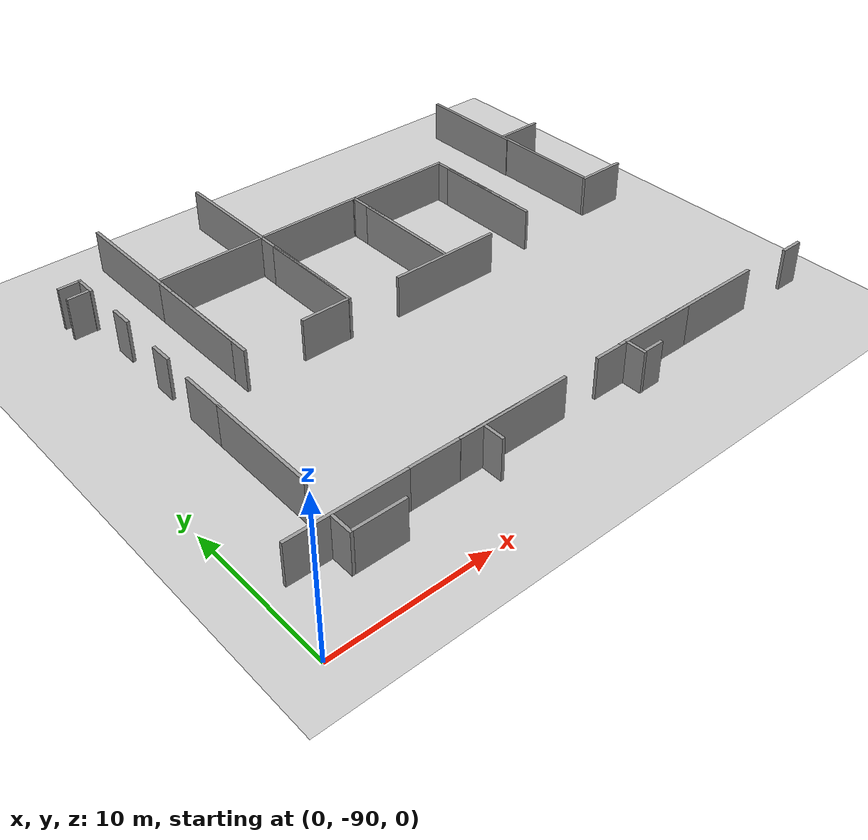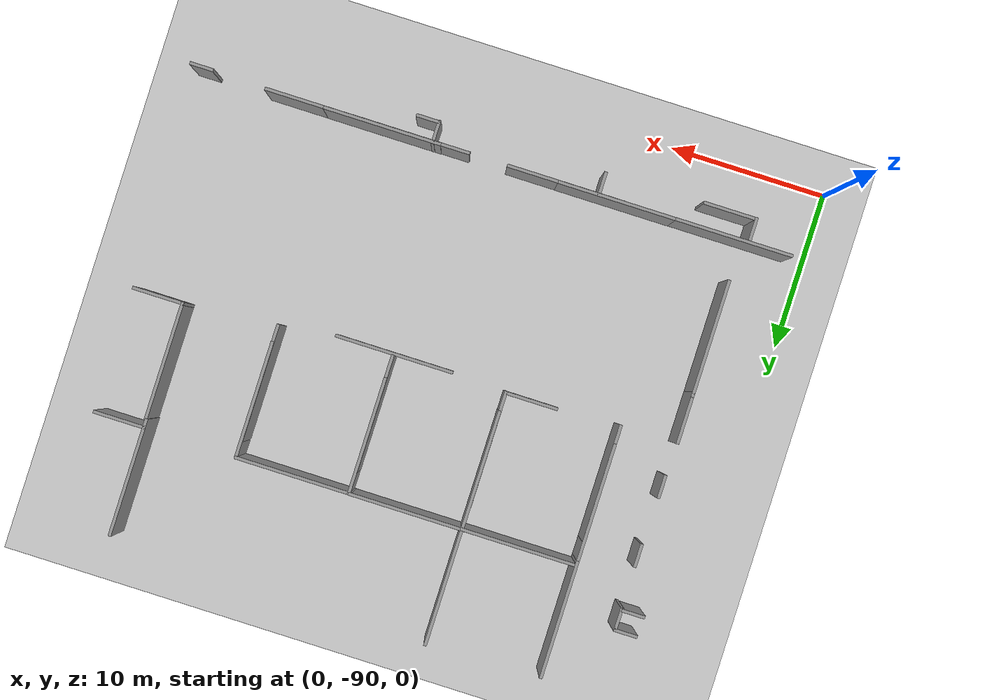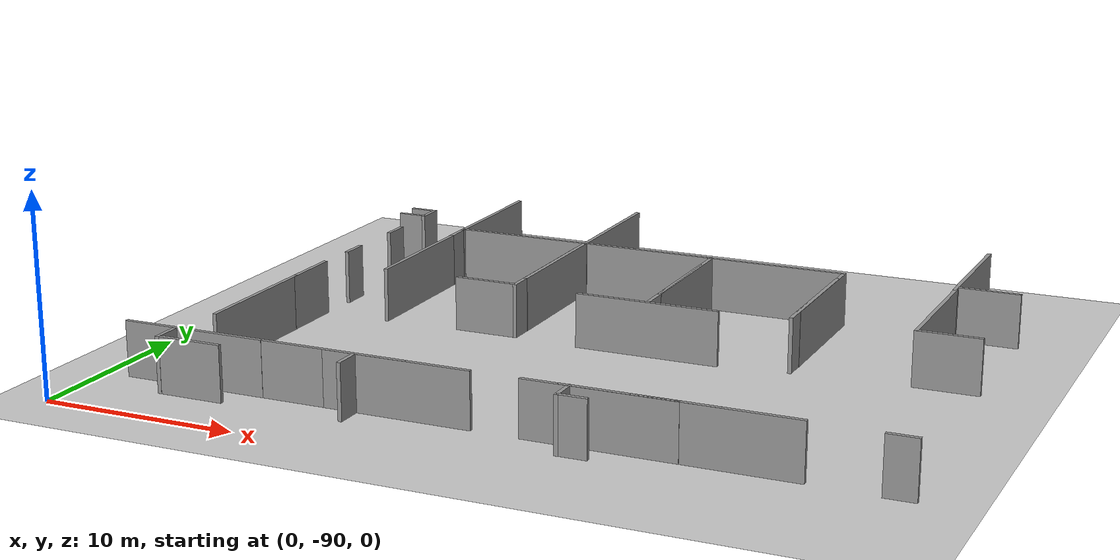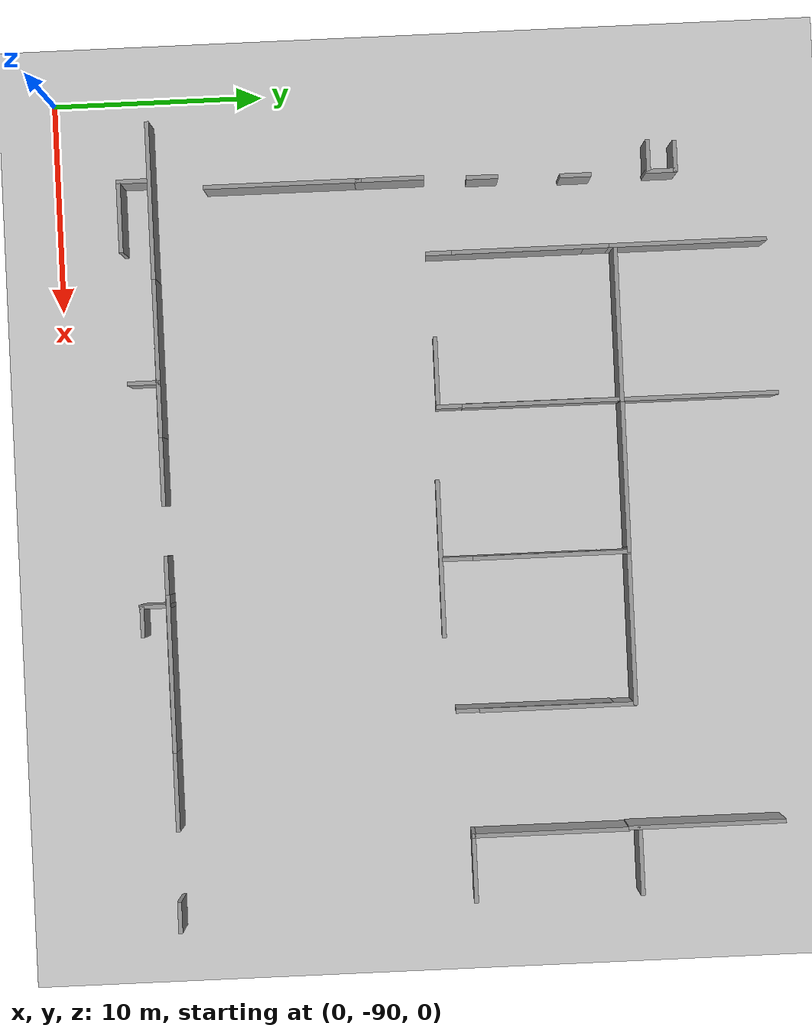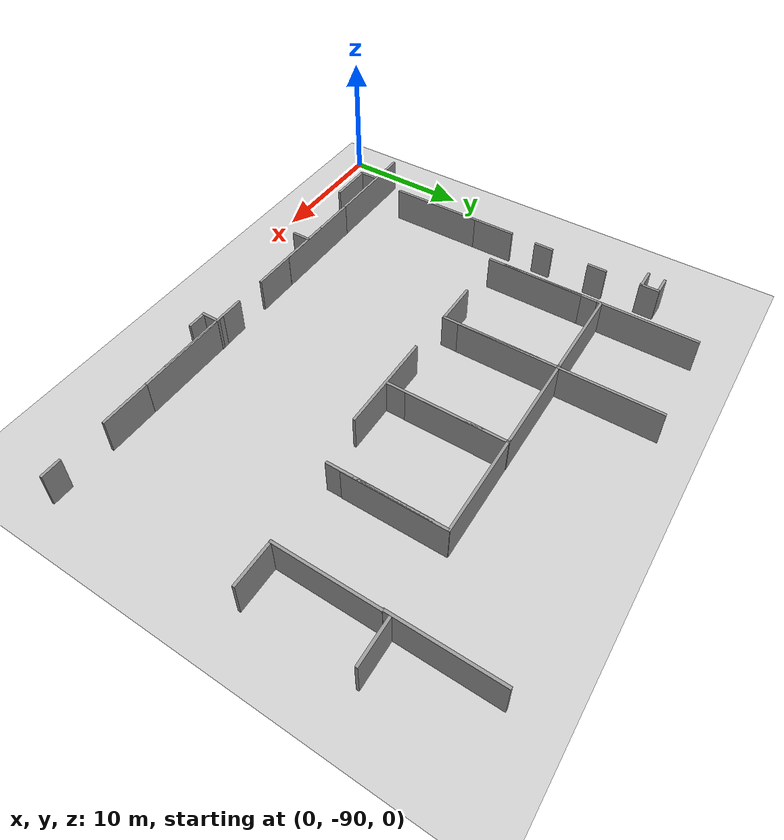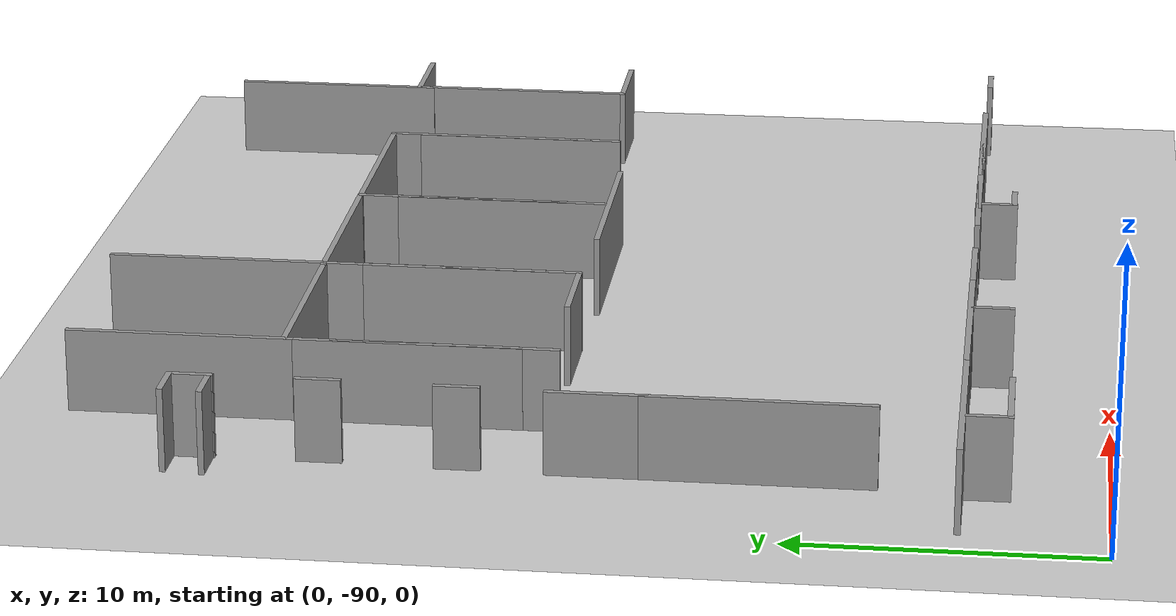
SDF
<sdf version="1.7">
 <world name="default">
  <model name="ground_plane">
   <static>1</static>
   <link name="link">
    <collision name="collision">
     <geometry><plane><normal>0 0 1</normal><size>100 100</size></plane></geometry>
     <surface>
      <contact><collide_bitmask>65535</collide_bitmask></contact>
      <friction><ode><mu>100</mu><mu2>50</mu2></ode></friction>
     </surface>
    </collision>
    <visual name="visual">
     <cast_shadows>0</cast_shadows>
     <geometry><plane><normal>0 0 1</normal><size>100 100</size></plane></geometry>
     <material>
      <script><uri>file://media/materials/scripts/gazebo.material</uri><name>Gazebo/Grey</name></script>
     </material>
    </visual>
   </link>
  </model>
  <model name="grey_wall_clone_2_clone_clone_clone_0_clone_1_clone_2">
   <static>1</static>
   <link name="link">
    <pose>0 0 1.4 0 -0 0</pose>
    <collision name="collision"><geometry><box><size>7.5 0.2 2.8</size></box></geometry></collision>
    <visual name="visual">
     <cast_shadows>0</cast_shadows>
     <geometry><box><size>7.5 0.2 2.8</size></box></geometry>
     <material>
      <script>
       <uri>model://grey_wall/materials/scripts</uri>
       <uri>model://grey_wall/materials/textures</uri>
       <name>vrc/grey_wall</name>
      </script>
     </material>
    </visual>
   </link>
   <pose>8.15911 -59.968 0 0 0 -1.5708</pose>
  </model>
  <model name="grey_wall_clone_2_clone_clone_clone_0_clone_1_clone_3">
   <static>1</static>
   <link name="link">
    <pose>0 0 1.4 0 -0 0</pose>
    <collision name="collision"><geometry><box><size>7.5 0.2 2.8</size></box></geometry></collision>
    <visual name="visual">
     <cast_shadows>0</cast_shadows>
     <geometry><box><size>7.5 0.2 2.8</size></box></geometry>
     <material>
      <script>
       <uri>model://grey_wall/materials/scripts</uri>
       <uri>model://grey_wall/materials/textures</uri>
       <name>vrc/grey_wall</name>
      </script>
     </material>
    </visual>
   </link>
   <pose>8.15597 -67.4415 0 0 0 -1.5708</pose>
  </model>
  <model name="grey_wall_clone_0_clone_0_clone_clone_1_clone_1_clone_clone_0_clone_clone">
   <static>1</static>
   <link name="link">
    <pose>0 0 1.4 0 -0 0</pose>
    <collision name="collision"><geometry><box><size>7.5 0.2 2.8</size></box></geometry></collision>
    <visual name="visual">
     <cast_shadows>0</cast_shadows>
     <geometry><box><size>7.5 0.2 2.8</size></box></geometry>
     <material>
      <script>
       <uri>model://grey_wall/materials/scripts</uri>
       <uri>model://grey_wall/materials/textures</uri>
       <name>vrc/grey_wall</name>
      </script>
     </material>
    </visual>
   </link>
   <pose>11.8281 -63.4143 0 0 -0 0</pose>
  </model>
  <model name="grey_wall_clone_2_clone_clone_clone_0_clone_1_clone_2_clone">
   <static>1</static>
   <link name="link">
    <pose>0 0 1.4 0 -0 0</pose>
    <collision name="collision"><geometry><box><size>7.5 0.2 2.8</size></box></geometry></collision>
    <visual name="visual">
     <cast_shadows>0</cast_shadows>
     <geometry><box><size>7.5 0.2 2.8</size></box></geometry>
     <material>
      <script>
       <uri>model://grey_wall/materials/scripts</uri>
       <uri>model://grey_wall/materials/textures</uri>
       <name>vrc/grey_wall</name>
      </script>
     </material>
    </visual>
   </link>
   <pose>15.4652 -59.7335 0 0 0 -1.5708</pose>
  </model>
  <model name="grey_wall_clone_2_clone_clone_clone_0_clone_1_clone_2_clone_1">
   <static>1</static>
   <link name="link">
    <pose>0 0 1.4 0 -0 0</pose>
    <collision name="collision"><geometry><box><size>7.5 0.2 2.8</size></box></geometry></collision>
    <visual name="visual">
     <cast_shadows>0</cast_shadows>
     <geometry><box><size>7.5 0.2 2.8</size></box></geometry>
     <material>
      <script>
       <uri>model://grey_wall/materials/scripts</uri>
       <uri>model://grey_wall/materials/textures</uri>
       <name>vrc/grey_wall</name>
      </script>
     </material>
    </visual>
   </link>
   <pose>15.4527 -67.244 0 0 0 -1.5708</pose>
  </model>
  <model name="grey_wall_clone_2_clone_clone_clone_0_clone_1_clone_3_clone">
   <static>1</static>
   <link name="link">
    <pose>0 0 1.4 0 -0 0</pose>
    <collision name="collision"><geometry><box><size>7.5 0.2 2.8</size></box></geometry></collision>
    <visual name="visual">
     <cast_shadows>0</cast_shadows>
     <geometry><box><size>7.5 0.2 2.8</size></box></geometry>
     <material>
      <script>
       <uri>model://grey_wall/materials/scripts</uri>
       <uri>model://grey_wall/materials/textures</uri>
       <name>vrc/grey_wall</name>
      </script>
     </material>
    </visual>
   </link>
   <pose>8.15766 -68.658 0 0 0 -1.5708</pose>
  </model>
  <model name="grey_wall_clone_2_clone_clone_clone_0_clone_1_clone_3_clone_0">
   <static>1</static>
   <link name="link">
    <pose>0 0 1.4 0 -0 0</pose>
    <collision name="collision"><geometry><box><size>7.5 0.2 2.8</size></box></geometry></collision>
    <visual name="visual">
     <cast_shadows>0</cast_shadows>
     <geometry><box><size>7.5 0.2 2.8</size></box></geometry>
     <material>
      <script>
       <uri>model://grey_wall/materials/scripts</uri>
       <uri>model://grey_wall/materials/textures</uri>
       <name>vrc/grey_wall</name>
      </script>
     </material>
    </visual>
   </link>
   <pose>15.4385 -68.4987 0 0 0 -1.5708</pose>
  </model>
  <model name="grey_wall_clone_0_clone_0_clone_clone_1_clone_1_clone_clone_0_clone_clone_clone">
   <static>1</static>
   <link name="link">
    <pose>0 0 1.4 0 -0 0</pose>
    <collision name="collision"><geometry><box><size>7.5 0.2 2.8</size></box></geometry></collision>
    <visual name="visual">
     <cast_shadows>0</cast_shadows>
     <geometry><box><size>7.5 0.2 2.8</size></box></geometry>
     <material>
      <script>
       <uri>model://grey_wall/materials/scripts</uri>
       <uri>model://grey_wall/materials/textures</uri>
       <name>vrc/grey_wall</name>
      </script>
     </material>
    </visual>
   </link>
   <pose>18.9683 -63.4004 0 0 -0 0</pose>
  </model>
  <model name="grey_wall_clone_2_clone_clone_clone_0_clone_1_clone_3_clone_0_clone">
   <static>1</static>
   <link name="link">
    <pose>0 0 1.4 0 -0 0</pose>
    <collision name="collision"><geometry><box><size>7.5 0.2 2.8</size></box></geometry></collision>
    <visual name="visual">
     <cast_shadows>0</cast_shadows>
     <geometry><box><size>7.5 0.2 2.8</size></box></geometry>
     <material>
      <script>
       <uri>model://grey_wall/materials/scripts</uri>
       <uri>model://grey_wall/materials/textures</uri>
       <name>vrc/grey_wall</name>
      </script>
     </material>
    </visual>
   </link>
   <pose>22.689 -67.0624 0 0 0 -1.5708</pose>
  </model>
  <model name="grey_wall_clone_2_clone_clone_clone_0_clone_1_clone_3_clone_0_clone_0">
   <static>1</static>
   <link name="link">
    <pose>0 0 1.4 0 -0 0</pose>
    <collision name="collision"><geometry><box><size>7.5 0.2 2.8</size></box></geometry></collision>
    <visual name="visual">
     <cast_shadows>0</cast_shadows>
     <geometry><box><size>7.5 0.2 2.8</size></box></geometry>
     <material>
      <script>
       <uri>model://grey_wall/materials/scripts</uri>
       <uri>model://grey_wall/materials/textures</uri>
       <name>vrc/grey_wall</name>
      </script>
     </material>
    </visual>
   </link>
   <pose>22.6786 -68.5108 0 0 0 -1.5708</pose>
  </model>
  <model name="grey_wall_clone_0_clone_0_clone_clone_1_clone_1_clone_clone_0_clone_clone_clone_clone">
   <static>1</static>
   <link name="link">
    <pose>0 0 1.4 0 -0 0</pose>
    <collision name="collision"><geometry><box><size>7.5 0.2 2.8</size></box></geometry></collision>
    <visual name="visual">
     <cast_shadows>0</cast_shadows>
     <geometry><box><size>7.5 0.2 2.8</size></box></geometry>
     <material>
      <script>
       <uri>model://grey_wall/materials/scripts</uri>
       <uri>model://grey_wall/materials/textures</uri>
       <name>vrc/grey_wall</name>
      </script>
     </material>
    </visual>
   </link>
   <pose>26.2397 -63.4136 0 0 -0 0</pose>
  </model>
  <model name="grey_wall_clone_2_clone_clone_clone_0_clone_1_clone_3_clone_0_clone_0_clone">
   <static>1</static>
   <link name="link">
    <pose>0 0 1.4 0 -0 0</pose>
    <collision name="collision"><geometry><box><size>7.5 0.2 2.8</size></box></geometry></collision>
    <visual name="visual">
     <cast_shadows>0</cast_shadows>
     <geometry><box><size>7.5 0.2 2.8</size></box></geometry>
     <material>
      <script>
       <uri>model://grey_wall/materials/scripts</uri>
       <uri>model://grey_wall/materials/textures</uri>
       <name>vrc/grey_wall</name>
      </script>
     </material>
    </visual>
   </link>
   <pose>29.9038 -67.0865 0 0 0 -1.5708</pose>
  </model>
  <model name="grey_wall_clone_2_clone_clone_clone_0_clone_1_clone_3_clone_0_clone_0_clone_0">
   <static>1</static>
   <link name="link">
    <pose>0 0 1.4 0 -0 0</pose>
    <collision name="collision"><geometry><box><size>7.5 0.2 2.8</size></box></geometry></collision>
    <visual name="visual">
     <cast_shadows>0</cast_shadows>
     <geometry><box><size>7.5 0.2 2.8</size></box></geometry>
     <material>
      <script>
       <uri>model://grey_wall/materials/scripts</uri>
       <uri>model://grey_wall/materials/textures</uri>
       <name>vrc/grey_wall</name>
      </script>
     </material>
    </visual>
   </link>
   <pose>29.8836 -68.1915 0 0 0 -1.5708</pose>
  </model>
  <model name="grey_wall_clone_0_clone_0_clone_clone_1_clone_1_clone_clone_0_clone_clone_clone_clone_0">
   <static>1</static>
   <link name="link">
    <pose>0 0 1.4 0 -0 0</pose>
    <collision name="collision"><geometry><box><size>7.5 0.2 2.8</size></box></geometry></collision>
    <visual name="visual">
     <cast_shadows>0</cast_shadows>
     <geometry><box><size>7.5 0.2 2.8</size></box></geometry>
     <material>
      <script>
       <uri>model://grey_wall/materials/scripts</uri>
       <uri>model://grey_wall/materials/textures</uri>
       <name>vrc/grey_wall</name>
      </script>
     </material>
    </visual>
   </link>
   <pose>22.624 -72.3311 0 0 -0 0</pose>
  </model>
  <model name="grey_wall_clone_2_clone_clone_clone_1_clone_clone_0_clone_clone_clone_clone_3">
   <static>1</static>
   <link name="link">
    <pose>0 0 1.4 0 -0 0</pose>
    <collision name="collision"><geometry><box><size>7.5 0.2 2.8</size></box></geometry></collision>
    <visual name="visual">
     <cast_shadows>0</cast_shadows>
     <geometry><box><size>7.5 0.2 2.8</size></box></geometry>
     <material>
      <script>
       <uri>model://grey_wall/materials/scripts</uri>
       <uri>model://grey_wall/materials/textures</uri>
       <name>vrc/grey_wall</name>
      </script>
     </material>
    </visual>
   </link>
   <pose>35.7785 -60.275 0 0 0 -1.5708</pose>
  </model>
  <model name="grey_wall_clone_2_clone_clone_clone_1_clone_clone_0_clone_clone_clone_clone_4">
   <static>1</static>
   <link name="link">
    <pose>0 0 1.4 0 -0 0</pose>
    <collision name="collision"><geometry><box><size>7.5 0.2 2.8</size></box></geometry></collision>
    <visual name="visual">
     <cast_shadows>0</cast_shadows>
     <geometry><box><size>7.5 0.2 2.8</size></box></geometry>
     <material>
      <script>
       <uri>model://grey_wall/materials/scripts</uri>
       <uri>model://grey_wall/materials/textures</uri>
       <name>vrc/grey_wall</name>
      </script>
     </material>
    </visual>
   </link>
   <pose>35.8291 -67.7015 0 0 0 -1.5708</pose>
  </model>
  <model name="half_wall_clone_0_clone_clone_clone_clone_clone_0">
   <link name="link">
    <pose>0 0 1.4 0 -0 0</pose>
    <inertial>
     <mass>1</mass>
     <inertia><ixx>1</ixx><ixy>0</ixy><ixz>0</ixz><iyy>1</iyy><iyz>0</iyz><izz>1</izz></inertia>
    </inertial>
    <visual name="visual">
     <cast_shadows>0</cast_shadows>
     <geometry><box><size>1.5 0.2 2.8</size></box></geometry>
     <material>
      <script>
       <uri>model://grey_wall/materials/scripts</uri>
       <uri>model://grey_wall/materials/textures</uri>
       <name>vrc/grey_wall</name>
      </script>
      <shader type="pixel"><normal_map>__default__</normal_map></shader>
      <ambient>1 1 1 1</ambient>
      <diffuse>1 1 1 1</diffuse>
      <specular>0 0 0 1</specular>
      <emissive>0 0 0 1</emissive>
     </material>
    </visual>
    <collision name="collision">
     <geometry><box><size>1.5 0.2 2.8</size></box></geometry>
     <surface>
      <friction>
       <ode><mu>1</mu><mu2>1</mu2><fdir1>0 0 0</fdir1><slip1>0</slip1><slip2>0</slip2></ode>
       <torsional>
        <coefficient>1</coefficient>
        <patch_radius>0</patch_radius>
        <surface_radius>0</surface_radius>
        <use_patch_radius>1</use_patch_radius>
        <ode><slip>0</slip></ode>
       </torsional>
      </friction>
      <bounce><restitution_coefficient>0</restitution_coefficient><threshold>1e+06</threshold></bounce>
      <contact>
       <collide_without_contact>0</collide_without_contact>
       <collide_without_contact_bitmask>1</collide_without_contact_bitmask>
       <collide_bitmask>1</collide_bitmask>
       <ode>
        <soft_cfm>0</soft_cfm>
        <soft_erp>0.2</soft_erp>
        <kp>1e+13</kp>
        <kd>1</kd>
        <max_vel>0.01</max_vel>
        <min_depth>0</min_depth>
       </ode>
       <bullet>
        <split_impulse>1</split_impulse>
        <split_impulse_penetration_threshold>-0.01</split_impulse_penetration_threshold>
        <soft_cfm>0</soft_cfm>
        <soft_erp>0.2</soft_erp>
        <kp>1e+13</kp>
        <kd>1</kd>
       </bullet>
      </contact>
     </surface>
    </collision>
   </link>
   <static>1</static>
   <pose>4.06122 -60.3961 0 0 -0 3.14159</pose>
  </model>
  <model name="half_wall_clone_0_clone_clone_clone_clone_clone_1">
   <link name="link">
    <pose>0 0 1.4 0 -0 0</pose>
    <inertial>
     <mass>1</mass>
     <inertia><ixx>1</ixx><ixy>0</ixy><ixz>0</ixz><iyy>1</iyy><iyz>0</iyz><izz>1</izz></inertia>
    </inertial>
    <visual name="visual">
     <cast_shadows>0</cast_shadows>
     <geometry><box><size>1.5 0.2 2.8</size></box></geometry>
     <material>
      <script>
       <uri>model://grey_wall/materials/scripts</uri>
       <uri>model://grey_wall/materials/textures</uri>
       <name>vrc/grey_wall</name>
      </script>
      <shader type="pixel"><normal_map>__default__</normal_map></shader>
      <ambient>1 1 1 1</ambient>
      <diffuse>1 1 1 1</diffuse>
      <specular>0 0 0 1</specular>
      <emissive>0 0 0 1</emissive>
     </material>
    </visual>
    <collision name="collision">
     <geometry><box><size>1.5 0.2 2.8</size></box></geometry>
     <surface>
      <friction>
       <ode><mu>1</mu><mu2>1</mu2><fdir1>0 0 0</fdir1><slip1>0</slip1><slip2>0</slip2></ode>
       <torsional>
        <coefficient>1</coefficient>
        <patch_radius>0</patch_radius>
        <surface_radius>0</surface_radius>
        <use_patch_radius>1</use_patch_radius>
        <ode><slip>0</slip></ode>
       </torsional>
      </friction>
      <bounce><restitution_coefficient>0</restitution_coefficient><threshold>1e+06</threshold></bounce>
      <contact>
       <collide_without_contact>0</collide_without_contact>
       <collide_without_contact_bitmask>1</collide_without_contact_bitmask>
       <collide_bitmask>1</collide_bitmask>
       <ode>
        <soft_cfm>0</soft_cfm>
        <soft_erp>0.2</soft_erp>
        <kp>1e+13</kp>
        <kd>1</kd>
        <max_vel>0.01</max_vel>
        <min_depth>0</min_depth>
       </ode>
       <bullet>
        <split_impulse>1</split_impulse>
        <split_impulse_penetration_threshold>-0.01</split_impulse_penetration_threshold>
        <soft_cfm>0</soft_cfm>
        <soft_erp>0.2</soft_erp>
        <kp>1e+13</kp>
        <kd>1</kd>
       </bullet>
      </contact>
     </surface>
    </collision>
   </link>
   <static>1</static>
   <pose>3.97285 -61.6667 0 0 -0 3.14159</pose>
  </model>
  <model name="half_wall_clone_0_clone_clone_clone_3">
   <link name="link">
    <pose>0 0 1.4 0 -0 0</pose>
    <inertial>
     <mass>1</mass>
     <inertia><ixx>1</ixx><ixy>0</ixy><ixz>0</ixz><iyy>1</iyy><iyz>0</iyz><izz>1</izz></inertia>
    </inertial>
    <visual name="visual">
     <cast_shadows>0</cast_shadows>
     <geometry><box><size>1.5 0.2 2.8</size></box></geometry>
     <material>
      <script>
       <uri>model://grey_wall/materials/scripts</uri>
       <uri>model://grey_wall/materials/textures</uri>
       <name>vrc/grey_wall</name>
      </script>
      <shader type="pixel"><normal_map>__default__</normal_map></shader>
      <ambient>1 1 1 1</ambient>
      <diffuse>1 1 1 1</diffuse>
      <specular>0 0 0 1</specular>
      <emissive>0 0 0 1</emissive>
     </material>
    </visual>
    <collision name="collision">
     <geometry><box><size>1.5 0.2 2.8</size></box></geometry>
     <surface>
      <friction>
       <ode><mu>1</mu><mu2>1</mu2><fdir1>0 0 0</fdir1><slip1>0</slip1><slip2>0</slip2></ode>
       <torsional>
        <coefficient>1</coefficient>
        <patch_radius>0</patch_radius>
        <surface_radius>0</surface_radius>
        <use_patch_radius>1</use_patch_radius>
        <ode><slip>0</slip></ode>
       </torsional>
      </friction>
      <bounce><restitution_coefficient>0</restitution_coefficient><threshold>1e+06</threshold></bounce>
      <contact>
       <collide_without_contact>0</collide_without_contact>
       <collide_without_contact_bitmask>1</collide_without_contact_bitmask>
       <collide_bitmask>1</collide_bitmask>
       <ode>
        <soft_cfm>0</soft_cfm>
        <soft_erp>0.2</soft_erp>
        <kp>1e+13</kp>
        <kd>1</kd>
        <max_vel>0.01</max_vel>
        <min_depth>0</min_depth>
       </ode>
       <bullet>
        <split_impulse>1</split_impulse>
        <split_impulse_penetration_threshold>-0.01</split_impulse_penetration_threshold>
        <soft_cfm>0</soft_cfm>
        <soft_erp>0.2</soft_erp>
        <kp>1e+13</kp>
        <kd>1</kd>
       </bullet>
      </contact>
     </surface>
    </collision>
   </link>
   <static>1</static>
   <pose>4.72456 -61.0607 0 0 0 -1.5708</pose>
  </model>
  <model name="half_wall_clone_0_clone_clone_clone_4">
   <link name="link">
    <pose>0 0 1.4 0 -0 0</pose>
    <inertial>
     <mass>1</mass>
     <inertia><ixx>1</ixx><ixy>0</ixy><ixz>0</ixz><iyy>1</iyy><iyz>0</iyz><izz>1</izz></inertia>
    </inertial>
    <visual name="visual">
     <cast_shadows>0</cast_shadows>
     <geometry><box><size>1.5 0.2 2.8</size></box></geometry>
     <material>
      <script>
       <uri>model://grey_wall/materials/scripts</uri>
       <uri>model://grey_wall/materials/textures</uri>
       <name>vrc/grey_wall</name>
      </script>
      <shader type="pixel"><normal_map>__default__</normal_map></shader>
      <ambient>1 1 1 1</ambient>
      <diffuse>1 1 1 1</diffuse>
      <specular>0 0 0 1</specular>
      <emissive>0 0 0 1</emissive>
     </material>
    </visual>
    <collision name="collision">
     <geometry><box><size>1.5 0.2 2.8</size></box></geometry>
     <surface>
      <friction>
       <ode><mu>1</mu><mu2>1</mu2><fdir1>0 0 0</fdir1><slip1>0</slip1><slip2>0</slip2></ode>
       <torsional>
        <coefficient>1</coefficient>
        <patch_radius>0</patch_radius>
        <surface_radius>0</surface_radius>
        <use_patch_radius>1</use_patch_radius>
        <ode><slip>0</slip></ode>
       </torsional>
      </friction>
      <bounce><restitution_coefficient>0</restitution_coefficient><threshold>1e+06</threshold></bounce>
      <contact>
       <collide_without_contact>0</collide_without_contact>
       <collide_without_contact_bitmask>1</collide_without_contact_bitmask>
       <collide_bitmask>1</collide_bitmask>
       <ode>
        <soft_cfm>0</soft_cfm>
        <soft_erp>0.2</soft_erp>
        <kp>1e+13</kp>
        <kd>1</kd>
        <max_vel>0.01</max_vel>
        <min_depth>0</min_depth>
       </ode>
       <bullet>
        <split_impulse>1</split_impulse>
        <split_impulse_penetration_threshold>-0.01</split_impulse_penetration_threshold>
        <soft_cfm>0</soft_cfm>
        <soft_erp>0.2</soft_erp>
        <kp>1e+13</kp>
        <kd>1</kd>
       </bullet>
      </contact>
     </surface>
    </collision>
   </link>
   <static>1</static>
   <pose>4.75348 -65.1422 0 0 0 -1.5708</pose>
  </model>
  <model name="half_wall_clone_0_clone_clone_clone_5">
   <link name="link">
    <pose>0 0 1.4 0 -0 0</pose>
    <inertial>
     <mass>1</mass>
     <inertia><ixx>1</ixx><ixy>0</ixy><ixz>0</ixz><iyy>1</iyy><iyz>0</iyz><izz>1</izz></inertia>
    </inertial>
    <visual name="visual">
     <cast_shadows>0</cast_shadows>
     <geometry><box><size>1.5 0.2 2.8</size></box></geometry>
     <material>
      <script>
       <uri>model://grey_wall/materials/scripts</uri>
       <uri>model://grey_wall/materials/textures</uri>
       <name>vrc/grey_wall</name>
      </script>
      <shader type="pixel"><normal_map>__default__</normal_map></shader>
      <ambient>1 1 1 1</ambient>
      <diffuse>1 1 1 1</diffuse>
      <specular>0 0 0 1</specular>
      <emissive>0 0 0 1</emissive>
     </material>
    </visual>
    <collision name="collision">
     <geometry><box><size>1.5 0.2 2.8</size></box></geometry>
     <surface>
      <friction>
       <ode><mu>1</mu><mu2>1</mu2><fdir1>0 0 0</fdir1><slip1>0</slip1><slip2>0</slip2></ode>
       <torsional>
        <coefficient>1</coefficient>
        <patch_radius>0</patch_radius>
        <surface_radius>0</surface_radius>
        <use_patch_radius>1</use_patch_radius>
        <ode><slip>0</slip></ode>
       </torsional>
      </friction>
      <bounce><restitution_coefficient>0</restitution_coefficient><threshold>1e+06</threshold></bounce>
      <contact>
       <collide_without_contact>0</collide_without_contact>
       <collide_without_contact_bitmask>1</collide_without_contact_bitmask>
       <collide_bitmask>1</collide_bitmask>
       <ode>
        <soft_cfm>0</soft_cfm>
        <soft_erp>0.2</soft_erp>
        <kp>1e+13</kp>
        <kd>1</kd>
        <max_vel>0.01</max_vel>
        <min_depth>0</min_depth>
       </ode>
       <bullet>
        <split_impulse>1</split_impulse>
        <split_impulse_penetration_threshold>-0.01</split_impulse_penetration_threshold>
        <soft_cfm>0</soft_cfm>
        <soft_erp>0.2</soft_erp>
        <kp>1e+13</kp>
        <kd>1</kd>
       </bullet>
      </contact>
     </surface>
    </collision>
   </link>
   <static>1</static>
   <pose>4.64709 -69.5671 0 0 0 -1.5708</pose>
  </model>
  <model name="fixed_half_clone_8_clone_clone">
   <link name="link">
    <pose>0 0 1.4 0 -0 0</pose>
    <inertial>
     <mass>1</mass>
     <inertia><ixx>1</ixx><ixy>0</ixy><ixz>0</ixz><iyy>1</iyy><iyz>0</iyz><izz>1</izz></inertia>
    </inertial>
    <visual name="visual">
     <cast_shadows>0</cast_shadows>
     <geometry><box><size>3.3 0.2 2.8</size></box></geometry>
     <material>
      <script>
       <uri>model://grey_wall/materials/scripts</uri>
       <uri>model://grey_wall/materials/textures</uri>
       <name>vrc/grey_wall</name>
      </script>
      <shader type="pixel"><normal_map>__default__</normal_map></shader>
      <ambient>1 1 1 1</ambient>
      <diffuse>1 1 1 1</diffuse>
      <specular>0 0 0 1</specular>
      <emissive>0 0 0 1</emissive>
     </material>
    </visual>
    <collision name="collision">
     <geometry><box><size>3.3 0.2 2.8</size></box></geometry>
     <surface>
      <friction>
       <ode><mu>1</mu><mu2>1</mu2><fdir1>0 0 0</fdir1><slip1>0</slip1><slip2>0</slip2></ode>
       <torsional>
        <coefficient>1</coefficient>
        <patch_radius>0</patch_radius>
        <surface_radius>0</surface_radius>
        <use_patch_radius>1</use_patch_radius>
        <ode><slip>0</slip></ode>
       </torsional>
      </friction>
      <bounce><restitution_coefficient>0</restitution_coefficient><threshold>1e+06</threshold></bounce>
      <contact>
       <collide_without_contact>0</collide_without_contact>
       <collide_without_contact_bitmask>1</collide_without_contact_bitmask>
       <collide_bitmask>1</collide_bitmask>
       <ode>
        <soft_cfm>0</soft_cfm>
        <soft_erp>0.2</soft_erp>
        <kp>1e+13</kp>
        <kd>1</kd>
        <max_vel>0.01</max_vel>
        <min_depth>0</min_depth>
       </ode>
       <bullet>
        <split_impulse>1</split_impulse>
        <split_impulse_penetration_threshold>-0.01</split_impulse_penetration_threshold>
        <soft_cfm>0</soft_cfm>
        <soft_erp>0.2</soft_erp>
        <kp>1e+13</kp>
        <kd>1</kd>
       </bullet>
      </contact>
     </surface>
    </collision>
   </link>
   <static>1</static>
   <pose>4.54465 -73.9744 0 0 0 -1.5708</pose>
  </model>
  <model name="fixed_half_clone_17_clone">
   <link name="link">
    <pose>0 0 1.4 0 -0 0</pose>
    <inertial>
     <mass>1</mass>
     <inertia><ixx>1</ixx><ixy>0</ixy><ixz>0</ixz><iyy>1</iyy><iyz>0</iyz><izz>1</izz></inertia>
    </inertial>
    <visual name="visual">
     <cast_shadows>0</cast_shadows>
     <geometry><box><size>3.3 0.2 2.8</size></box></geometry>
     <material>
      <script>
       <uri>model://grey_wall/materials/scripts</uri>
       <uri>model://grey_wall/materials/textures</uri>
       <name>vrc/grey_wall</name>
      </script>
      <shader type="pixel"><normal_map>__default__</normal_map></shader>
      <ambient>1 1 1 1</ambient>
      <diffuse>1 1 1 1</diffuse>
      <specular>0 0 0 1</specular>
      <emissive>0 0 0 1</emissive>
     </material>
    </visual>
    <collision name="collision">
     <geometry><box><size>3.3 0.2 2.8</size></box></geometry>
     <surface>
      <friction>
       <ode><mu>1</mu><mu2>1</mu2><fdir1>0 0 0</fdir1><slip1>0</slip1><slip2>0</slip2></ode>
       <torsional>
        <coefficient>1</coefficient>
        <patch_radius>0</patch_radius>
        <surface_radius>0</surface_radius>
        <use_patch_radius>1</use_patch_radius>
        <ode><slip>0</slip></ode>
       </torsional>
      </friction>
      <bounce><restitution_coefficient>0</restitution_coefficient><threshold>1e+06</threshold></bounce>
      <contact>
       <collide_without_contact>0</collide_without_contact>
       <collide_without_contact_bitmask>1</collide_without_contact_bitmask>
       <collide_bitmask>1</collide_bitmask>
       <ode>
        <soft_cfm>0</soft_cfm>
        <soft_erp>0.2</soft_erp>
        <kp>1e+13</kp>
        <kd>1</kd>
        <max_vel>0.01</max_vel>
        <min_depth>0</min_depth>
       </ode>
       <bullet>
        <split_impulse>1</split_impulse>
        <split_impulse_penetration_threshold>-0.01</split_impulse_penetration_threshold>
        <soft_cfm>0</soft_cfm>
        <soft_erp>0.2</soft_erp>
        <kp>1e+13</kp>
        <kd>1</kd>
       </bullet>
      </contact>
     </surface>
    </collision>
   </link>
   <static>1</static>
   <pose>13.7658 -72.1398 0 0 -0 3.14159</pose>
  </model>
  <model name="fixed_half_clone_17_clone_1">
   <link name="link">
    <pose>0 0 1.4 0 -0 0</pose>
    <inertial>
     <mass>1</mass>
     <inertia><ixx>1</ixx><ixy>0</ixy><ixz>0</ixz><iyy>1</iyy><iyz>0</iyz><izz>1</izz></inertia>
    </inertial>
    <visual name="visual">
     <cast_shadows>0</cast_shadows>
     <geometry><box><size>3.3 0.2 2.8</size></box></geometry>
     <material>
      <script>
       <uri>model://grey_wall/materials/scripts</uri>
       <uri>model://grey_wall/materials/textures</uri>
       <name>vrc/grey_wall</name>
      </script>
      <shader type="pixel"><normal_map>__default__</normal_map></shader>
      <ambient>1 1 1 1</ambient>
      <diffuse>1 1 1 1</diffuse>
      <specular>0 0 0 1</specular>
      <emissive>0 0 0 1</emissive>
     </material>
    </visual>
    <collision name="collision">
     <geometry><box><size>3.3 0.2 2.8</size></box></geometry>
     <surface>
      <friction>
       <ode><mu>1</mu><mu2>1</mu2><fdir1>0 0 0</fdir1><slip1>0</slip1><slip2>0</slip2></ode>
       <torsional>
        <coefficient>1</coefficient>
        <patch_radius>0</patch_radius>
        <surface_radius>0</surface_radius>
        <use_patch_radius>1</use_patch_radius>
        <ode><slip>0</slip></ode>
       </torsional>
      </friction>
      <bounce><restitution_coefficient>0</restitution_coefficient><threshold>1e+06</threshold></bounce>
      <contact>
       <collide_without_contact>0</collide_without_contact>
       <collide_without_contact_bitmask>1</collide_without_contact_bitmask>
       <collide_bitmask>1</collide_bitmask>
       <ode>
        <soft_cfm>0</soft_cfm>
        <soft_erp>0.2</soft_erp>
        <kp>1e+13</kp>
        <kd>1</kd>
        <max_vel>0.01</max_vel>
        <min_depth>0</min_depth>
       </ode>
       <bullet>
        <split_impulse>1</split_impulse>
        <split_impulse_penetration_threshold>-0.01</split_impulse_penetration_threshold>
        <soft_cfm>0</soft_cfm>
        <soft_erp>0.2</soft_erp>
        <kp>1e+13</kp>
        <kd>1</kd>
       </bullet>
      </contact>
     </surface>
    </collision>
   </link>
   <static>1</static>
   <pose>37.3741 -71.3693 0 0 -0 3.14159</pose>
  </model>
  <model name="fixed_half_clone_17_clone_2">
   <link name="link">
    <pose>0 0 1.4 0 -0 0</pose>
    <inertial>
     <mass>1</mass>
     <inertia><ixx>1</ixx><ixy>0</ixy><ixz>0</ixz><iyy>1</iyy><iyz>0</iyz><izz>1</izz></inertia>
    </inertial>
    <visual name="visual">
     <cast_shadows>0</cast_shadows>
     <geometry><box><size>3.3 0.2 2.8</size></box></geometry>
     <material>
      <script>
       <uri>model://grey_wall/materials/scripts</uri>
       <uri>model://grey_wall/materials/textures</uri>
       <name>vrc/grey_wall</name>
      </script>
      <shader type="pixel"><normal_map>__default__</normal_map></shader>
      <ambient>1 1 1 1</ambient>
      <diffuse>1 1 1 1</diffuse>
      <specular>0 0 0 1</specular>
      <emissive>0 0 0 1</emissive>
     </material>
    </visual>
    <collision name="collision">
     <geometry><box><size>3.3 0.2 2.8</size></box></geometry>
     <surface>
      <friction>
       <ode><mu>1</mu><mu2>1</mu2><fdir1>0 0 0</fdir1><slip1>0</slip1><slip2>0</slip2></ode>
       <torsional>
        <coefficient>1</coefficient>
        <patch_radius>0</patch_radius>
        <surface_radius>0</surface_radius>
        <use_patch_radius>1</use_patch_radius>
        <ode><slip>0</slip></ode>
       </torsional>
      </friction>
      <bounce><restitution_coefficient>0</restitution_coefficient><threshold>1e+06</threshold></bounce>
      <contact>
       <collide_without_contact>0</collide_without_contact>
       <collide_without_contact_bitmask>1</collide_without_contact_bitmask>
       <collide_bitmask>1</collide_bitmask>
       <ode>
        <soft_cfm>0</soft_cfm>
        <soft_erp>0.2</soft_erp>
        <kp>1e+13</kp>
        <kd>1</kd>
        <max_vel>0.01</max_vel>
        <min_depth>0</min_depth>
       </ode>
       <bullet>
        <split_impulse>1</split_impulse>
        <split_impulse_penetration_threshold>-0.01</split_impulse_penetration_threshold>
        <soft_cfm>0</soft_cfm>
        <soft_erp>0.2</soft_erp>
        <kp>1e+13</kp>
        <kd>1</kd>
       </bullet>
      </contact>
     </surface>
    </collision>
   </link>
   <static>1</static>
   <pose>37.3653 -63.4639 0 0 -0 3.14159</pose>
  </model>
  <model name="grey_wall_clone_1_clone_2_clone_clone_clone_clone_clone_clone_clone_3_clone_0_clone_0_clone_5_clone_2_clone_2_clone_clone_17">
   <static>1</static>
   <link name="link">
    <pose>0 0 1.4 0 -0 0</pose>
    <collision name="collision"><geometry><box><size>7.5 0.2 2.8</size></box></geometry></collision>
    <visual name="visual">
     <cast_shadows>0</cast_shadows>
     <geometry><box><size>7.5 0.2 2.8</size></box></geometry>
     <material>
      <script>
       <uri>model://grey_wall/materials/scripts</uri>
       <uri>model://grey_wall/materials/textures</uri>
       <name>vrc/grey_wall</name>
      </script>
     </material>
    </visual>
   </link>
   <pose>27.5164 -85.34 0 0 -0 0</pose>
  </model>
  <model name="grey_wall_clone_1_clone_2_clone_clone_clone_clone_clone_clone_clone_3_clone_0_clone_0_clone_5_clone_2_clone_2_clone_clone_19">
   <static>1</static>
   <link name="link">
    <pose>0 0 1.4 0 -0 0</pose>
    <collision name="collision"><geometry><box><size>7.5 0.2 2.8</size></box></geometry></collision>
    <visual name="visual">
     <cast_shadows>0</cast_shadows>
     <geometry><box><size>7.5 0.2 2.8</size></box></geometry>
     <material>
      <script>
       <uri>model://grey_wall/materials/scripts</uri>
       <uri>model://grey_wall/materials/textures</uri>
       <name>vrc/grey_wall</name>
      </script>
     </material>
    </visual>
   </link>
   <pose>12.5436 -85.3398 0 0 -0 0</pose>
  </model>
  <model name="grey_wall_clone_1_clone_2_clone_clone_clone_clone_clone_clone_clone_3_clone_0_clone_0_clone_5_clone_2_clone_2_clone_clone_20">
   <static>1</static>
   <link name="link">
    <pose>0 0 1.4 0 -0 0</pose>
    <collision name="collision"><geometry><box><size>7.5 0.2 2.8</size></box></geometry></collision>
    <visual name="visual">
     <cast_shadows>0</cast_shadows>
     <geometry><box><size>7.5 0.2 2.8</size></box></geometry>
     <material>
      <script>
       <uri>model://grey_wall/materials/scripts</uri>
       <uri>model://grey_wall/materials/textures</uri>
       <name>vrc/grey_wall</name>
      </script>
     </material>
    </visual>
   </link>
   <pose>5.04811 -85.3477 0 0 -0 0</pose>
  </model>
  <model name="grey_wall_clone_2_clone_clone_clone_0_clone_1_clone_3_clone_clone_0">
   <static>1</static>
   <link name="link">
    <pose>0 0 1.4 0 -0 0</pose>
    <collision name="collision"><geometry><box><size>7.5 0.2 2.8</size></box></geometry></collision>
    <visual name="visual">
     <cast_shadows>0</cast_shadows>
     <geometry><box><size>7.5 0.2 2.8</size></box></geometry>
     <material>
      <script>
       <uri>model://grey_wall/materials/scripts</uri>
       <uri>model://grey_wall/materials/textures</uri>
       <name>vrc/grey_wall</name>
      </script>
     </material>
    </visual>
   </link>
   <pose>4.54276 -79.0504 0 0 0 -1.5708</pose>
  </model>
  <model name="half_wall_clone_0_clone_clone_clone_6_clone_clone">
   <link name="link">
    <pose>0 0 1.4 0 -0 0</pose>
    <inertial>
     <mass>1</mass>
     <inertia><ixx>1</ixx><ixy>0</ixy><ixz>0</ixz><iyy>1</iyy><iyz>0</iyz><izz>1</izz></inertia>
    </inertial>
    <visual name="visual">
     <cast_shadows>0</cast_shadows>
     <geometry><box><size>1.5 0.2 2.8</size></box></geometry>
     <material>
      <script>
       <uri>model://grey_wall/materials/scripts</uri>
       <uri>model://grey_wall/materials/textures</uri>
       <name>vrc/grey_wall</name>
      </script>
      <shader type="pixel"><normal_map>__default__</normal_map></shader>
      <ambient>1 1 1 1</ambient>
      <diffuse>1 1 1 1</diffuse>
      <specular>0 0 0 1</specular>
      <emissive>0 0 0 1</emissive>
     </material>
    </visual>
    <collision name="collision">
     <geometry><box><size>1.5 0.2 2.8</size></box></geometry>
     <surface>
      <friction>
       <ode><mu>1</mu><mu2>1</mu2><fdir1>0 0 0</fdir1><slip1>0</slip1><slip2>0</slip2></ode>
       <torsional>
        <coefficient>1</coefficient>
        <patch_radius>0</patch_radius>
        <surface_radius>0</surface_radius>
        <use_patch_radius>1</use_patch_radius>
        <ode><slip>0</slip></ode>
       </torsional>
      </friction>
      <bounce><restitution_coefficient>0</restitution_coefficient><threshold>1e+06</threshold></bounce>
      <contact>
       <collide_without_contact>0</collide_without_contact>
       <collide_without_contact_bitmask>1</collide_without_contact_bitmask>
       <collide_bitmask>1</collide_bitmask>
       <ode>
        <soft_cfm>0</soft_cfm>
        <soft_erp>0.2</soft_erp>
        <kp>1e+13</kp>
        <kd>1</kd>
        <max_vel>0.01</max_vel>
        <min_depth>0</min_depth>
       </ode>
       <bullet>
        <split_impulse>1</split_impulse>
        <split_impulse_penetration_threshold>-0.01</split_impulse_penetration_threshold>
        <soft_cfm>0</soft_cfm>
        <soft_erp>0.2</soft_erp>
        <kp>1e+13</kp>
        <kd>1</kd>
       </bullet>
      </contact>
     </surface>
    </collision>
   </link>
   <static>1</static>
   <pose>4.09949 -86.1742 0 0 0 -1.5708</pose>
  </model>
  <model name="fixed_half_clone_8_clone_clone_6_clone_0_clone">
   <link name="link">
    <pose>0 0 1.4 0 -0 0</pose>
    <inertial>
     <mass>1</mass>
     <inertia><ixx>1</ixx><ixy>0</ixy><ixz>0</ixz><iyy>1</iyy><iyz>0</iyz><izz>1</izz></inertia>
    </inertial>
    <visual name="visual">
     <cast_shadows>0</cast_shadows>
     <geometry><box><size>3.3 0.2 2.8</size></box></geometry>
     <material>
      <script>
       <uri>model://grey_wall/materials/scripts</uri>
       <uri>model://grey_wall/materials/textures</uri>
       <name>vrc/grey_wall</name>
      </script>
      <shader type="pixel"><normal_map>__default__</normal_map></shader>
      <ambient>1 1 1 1</ambient>
      <diffuse>1 1 1 1</diffuse>
      <specular>0 0 0 1</specular>
      <emissive>0 0 0 1</emissive>
     </material>
    </visual>
    <collision name="collision">
     <geometry><box><size>3.3 0.2 2.8</size></box></geometry>
     <surface>
      <friction>
       <ode><mu>1</mu><mu2>1</mu2><fdir1>0 0 0</fdir1><slip1>0</slip1><slip2>0</slip2></ode>
       <torsional>
        <coefficient>1</coefficient>
        <patch_radius>0</patch_radius>
        <surface_radius>0</surface_radius>
        <use_patch_radius>1</use_patch_radius>
        <ode><slip>0</slip></ode>
       </torsional>
      </friction>
      <bounce><restitution_coefficient>0</restitution_coefficient><threshold>1e+06</threshold></bounce>
      <contact>
       <collide_without_contact>0</collide_without_contact>
       <collide_without_contact_bitmask>1</collide_without_contact_bitmask>
       <collide_bitmask>1</collide_bitmask>
       <ode>
        <soft_cfm>0</soft_cfm>
        <soft_erp>0.2</soft_erp>
        <kp>1e+13</kp>
        <kd>1</kd>
        <max_vel>0.01</max_vel>
        <min_depth>0</min_depth>
       </ode>
       <bullet>
        <split_impulse>1</split_impulse>
        <split_impulse_penetration_threshold>-0.01</split_impulse_penetration_threshold>
        <soft_cfm>0</soft_cfm>
        <soft_erp>0.2</soft_erp>
        <kp>1e+13</kp>
        <kd>1</kd>
       </bullet>
      </contact>
     </surface>
    </collision>
   </link>
   <static>1</static>
   <pose>5.81233 -86.818 0 0 -0 3.14159</pose>
  </model>
  <model name="half_wall_clone_0_clone_clone_clone_6_clone_clone_clone">
   <link name="link">
    <pose>0 0 1.4 0 -0 0</pose>
    <inertial>
     <mass>1</mass>
     <inertia><ixx>1</ixx><ixy>0</ixy><ixz>0</ixz><iyy>1</iyy><iyz>0</iyz><izz>1</izz></inertia>
    </inertial>
    <visual name="visual">
     <cast_shadows>0</cast_shadows>
     <geometry><box><size>1.5 0.2 2.8</size></box></geometry>
     <material>
      <script>
       <uri>model://grey_wall/materials/scripts</uri>
       <uri>model://grey_wall/materials/textures</uri>
       <name>vrc/grey_wall</name>
      </script>
      <shader type="pixel"><normal_map>__default__</normal_map></shader>
      <ambient>1 1 1 1</ambient>
      <diffuse>1 1 1 1</diffuse>
      <specular>0 0 0 1</specular>
      <emissive>0 0 0 1</emissive>
     </material>
    </visual>
    <collision name="collision">
     <geometry><box><size>1.5 0.2 2.8</size></box></geometry>
     <surface>
      <friction>
       <ode><mu>1</mu><mu2>1</mu2><fdir1>0 0 0</fdir1><slip1>0</slip1><slip2>0</slip2></ode>
       <torsional>
        <coefficient>1</coefficient>
        <patch_radius>0</patch_radius>
        <surface_radius>0</surface_radius>
        <use_patch_radius>1</use_patch_radius>
        <ode><slip>0</slip></ode>
       </torsional>
      </friction>
      <bounce><restitution_coefficient>0</restitution_coefficient><threshold>1e+06</threshold></bounce>
      <contact>
       <collide_without_contact>0</collide_without_contact>
       <collide_without_contact_bitmask>1</collide_without_contact_bitmask>
       <collide_bitmask>1</collide_bitmask>
       <ode>
        <soft_cfm>0</soft_cfm>
        <soft_erp>0.2</soft_erp>
        <kp>1e+13</kp>
        <kd>1</kd>
        <max_vel>0.01</max_vel>
        <min_depth>0</min_depth>
       </ode>
       <bullet>
        <split_impulse>1</split_impulse>
        <split_impulse_penetration_threshold>-0.01</split_impulse_penetration_threshold>
        <soft_cfm>0</soft_cfm>
        <soft_erp>0.2</soft_erp>
        <kp>1e+13</kp>
        <kd>1</kd>
       </bullet>
      </contact>
     </surface>
    </collision>
   </link>
   <static>1</static>
   <pose>13.6813 -86.0497 0 0 0 -1.5708</pose>
  </model>
  <model name="grey_wall_clone_1_clone_2_clone_clone_clone_clone_clone_clone_clone_3_clone_0_clone_0_clone_5_clone_2_clone_2_clone_clone_19_clone">
   <static>1</static>
   <link name="link">
    <pose>0 0 1.4 0 -0 0</pose>
    <collision name="collision"><geometry><box><size>7.5 0.2 2.8</size></box></geometry></collision>
    <visual name="visual">
     <cast_shadows>0</cast_shadows>
     <geometry><box><size>7.5 0.2 2.8</size></box></geometry>
     <material>
      <script>
       <uri>model://grey_wall/materials/scripts</uri>
       <uri>model://grey_wall/materials/textures</uri>
       <name>vrc/grey_wall</name>
      </script>
     </material>
    </visual>
   </link>
   <pose>15.7979 -85.3491 0 0 -0 0</pose>
  </model>
  <model name="grey_wall_clone_1_clone_2_clone_clone_clone_clone_clone_clone_clone_3_clone_0_clone_0_clone_5_clone_2_clone_2_clone_clone_17_clone_0">
   <static>1</static>
   <link name="link">
    <pose>0 0 1.4 0 -0 0</pose>
    <collision name="collision"><geometry><box><size>7.5 0.2 2.8</size></box></geometry></collision>
    <visual name="visual">
     <cast_shadows>0</cast_shadows>
     <geometry><box><size>7.5 0.2 2.8</size></box></geometry>
     <material>
      <script>
       <uri>model://grey_wall/materials/scripts</uri>
       <uri>model://grey_wall/materials/textures</uri>
       <name>vrc/grey_wall</name>
      </script>
     </material>
    </visual>
   </link>
   <pose>25.6791 -85.3557 0 0 -0 0</pose>
  </model>
  <model name="half_wall_clone_0_clone_clone_clone_clone_clone_0_clone">
   <link name="link">
    <pose>0 0 1.4 0 -0 0</pose>
    <inertial>
     <mass>1</mass>
     <inertia><ixx>1</ixx><ixy>0</ixy><ixz>0</ixz><iyy>1</iyy><iyz>0</iyz><izz>1</izz></inertia>
    </inertial>
    <visual name="visual">
     <cast_shadows>0</cast_shadows>
     <geometry><box><size>1.5 0.2 2.8</size></box></geometry>
     <material>
      <script>
       <uri>model://grey_wall/materials/scripts</uri>
       <uri>model://grey_wall/materials/textures</uri>
       <name>vrc/grey_wall</name>
      </script>
      <shader type="pixel"><normal_map>__default__</normal_map></shader>
      <ambient>1 1 1 1</ambient>
      <diffuse>1 1 1 1</diffuse>
      <specular>0 0 0 1</specular>
      <emissive>0 0 0 1</emissive>
     </material>
    </visual>
    <collision name="collision">
     <geometry><box><size>1.5 0.2 2.8</size></box></geometry>
     <surface>
      <friction>
       <ode><mu>1</mu><mu2>1</mu2><fdir1>0 0 0</fdir1><slip1>0</slip1><slip2>0</slip2></ode>
       <torsional>
        <coefficient>1</coefficient>
        <patch_radius>0</patch_radius>
        <surface_radius>0</surface_radius>
        <use_patch_radius>1</use_patch_radius>
        <ode><slip>0</slip></ode>
       </torsional>
      </friction>
      <bounce><restitution_coefficient>0</restitution_coefficient><threshold>1e+06</threshold></bounce>
      <contact>
       <collide_without_contact>0</collide_without_contact>
       <collide_without_contact_bitmask>1</collide_without_contact_bitmask>
       <collide_bitmask>1</collide_bitmask>
       <ode>
        <soft_cfm>0</soft_cfm>
        <soft_erp>0.2</soft_erp>
        <kp>1e+13</kp>
        <kd>1</kd>
        <max_vel>0.01</max_vel>
        <min_depth>0</min_depth>
       </ode>
       <bullet>
        <split_impulse>1</split_impulse>
        <split_impulse_penetration_threshold>-0.01</split_impulse_penetration_threshold>
        <soft_cfm>0</soft_cfm>
        <soft_erp>0.2</soft_erp>
        <kp>1e+13</kp>
        <kd>1</kd>
       </bullet>
      </contact>
     </surface>
    </collision>
   </link>
   <static>1</static>
   <pose>24.9956 -86.6013 0 0 -0 3.14159</pose>
  </model>
  <model name="half_wall_clone_0_clone_clone_clone_6_clone_clone_clone_1">
   <link name="link">
    <pose>0 0 1.4 0 -0 0</pose>
    <inertial>
     <mass>1</mass>
     <inertia><ixx>1</ixx><ixy>0</ixy><ixz>0</ixz><iyy>1</iyy><iyz>0</iyz><izz>1</izz></inertia>
    </inertial>
    <visual name="visual">
     <cast_shadows>0</cast_shadows>
     <geometry><box><size>1.5 0.2 2.8</size></box></geometry>
     <material>
      <script>
       <uri>model://grey_wall/materials/scripts</uri>
       <uri>model://grey_wall/materials/textures</uri>
       <name>vrc/grey_wall</name>
      </script>
      <shader type="pixel"><normal_map>__default__</normal_map></shader>
      <ambient>1 1 1 1</ambient>
      <diffuse>1 1 1 1</diffuse>
      <specular>0 0 0 1</specular>
      <emissive>0 0 0 1</emissive>
     </material>
    </visual>
    <collision name="collision">
     <geometry><box><size>1.5 0.2 2.8</size></box></geometry>
     <surface>
      <friction>
       <ode><mu>1</mu><mu2>1</mu2><fdir1>0 0 0</fdir1><slip1>0</slip1><slip2>0</slip2></ode>
       <torsional>
        <coefficient>1</coefficient>
        <patch_radius>0</patch_radius>
        <surface_radius>0</surface_radius>
        <use_patch_radius>1</use_patch_radius>
        <ode><slip>0</slip></ode>
       </torsional>
      </friction>
      <bounce><restitution_coefficient>0</restitution_coefficient><threshold>1e+06</threshold></bounce>
      <contact>
       <collide_without_contact>0</collide_without_contact>
       <collide_without_contact_bitmask>1</collide_without_contact_bitmask>
       <collide_bitmask>1</collide_bitmask>
       <ode>
        <soft_cfm>0</soft_cfm>
        <soft_erp>0.2</soft_erp>
        <kp>1e+13</kp>
        <kd>1</kd>
        <max_vel>0.01</max_vel>
        <min_depth>0</min_depth>
       </ode>
       <bullet>
        <split_impulse>1</split_impulse>
        <split_impulse_penetration_threshold>-0.01</split_impulse_penetration_threshold>
        <soft_cfm>0</soft_cfm>
        <soft_erp>0.2</soft_erp>
        <kp>1e+13</kp>
        <kd>1</kd>
       </bullet>
      </contact>
     </surface>
    </collision>
   </link>
   <static>1</static>
   <pose>24.2891 -85.9755 0 0 0 -1.5708</pose>
  </model>
  <model name="grey_wall_clone_1_clone_2_clone_clone_clone_clone_clone_clone_clone_3_clone_0_clone_0_clone_5_clone_2_clone_2_clone_clone_17_clone_1">
   <static>1</static>
   <link name="link">
    <pose>0 0 1.4 0 -0 0</pose>
    <collision name="collision"><geometry><box><size>7.5 0.2 2.8</size></box></geometry></collision>
    <visual name="visual">
     <cast_shadows>0</cast_shadows>
     <geometry><box><size>7.5 0.2 2.8</size></box></geometry>
     <material>
      <script>
       <uri>model://grey_wall/materials/scripts</uri>
       <uri>model://grey_wall/materials/textures</uri>
       <name>vrc/grey_wall</name>
      </script>
     </material>
    </visual>
   </link>
   <pose>31.2644 -85.3457 0 0 -0 0</pose>
  </model>
  <model name="half_wall_clone_0_clone_clone_clone_clone_clone_0_clone_clone_0">
   <link name="link">
    <pose>0 0 1.4 0 -0 0</pose>
    <inertial>
     <mass>1</mass>
     <inertia><ixx>1</ixx><ixy>0</ixy><ixz>0</ixz><iyy>1</iyy><iyz>0</iyz><izz>1</izz></inertia>
    </inertial>
    <visual name="visual">
     <cast_shadows>0</cast_shadows>
     <geometry><box><size>1.5 0.2 2.8</size></box></geometry>
     <material>
      <script>
       <uri>model://grey_wall/materials/scripts</uri>
       <uri>model://grey_wall/materials/textures</uri>
       <name>vrc/grey_wall</name>
      </script>
      <shader type="pixel"><normal_map>__default__</normal_map></shader>
      <ambient>1 1 1 1</ambient>
      <diffuse>1 1 1 1</diffuse>
      <specular>0 0 0 1</specular>
      <emissive>0 0 0 1</emissive>
     </material>
    </visual>
    <collision name="collision">
     <geometry><box><size>1.5 0.2 2.8</size></box></geometry>
     <surface>
      <friction>
       <ode><mu>1</mu><mu2>1</mu2><fdir1>0 0 0</fdir1><slip1>0</slip1><slip2>0</slip2></ode>
       <torsional>
        <coefficient>1</coefficient>
        <patch_radius>0</patch_radius>
        <surface_radius>0</surface_radius>
        <use_patch_radius>1</use_patch_radius>
        <ode><slip>0</slip></ode>
       </torsional>
      </friction>
      <bounce><restitution_coefficient>0</restitution_coefficient><threshold>1e+06</threshold></bounce>
      <contact>
       <collide_without_contact>0</collide_without_contact>
       <collide_without_contact_bitmask>1</collide_without_contact_bitmask>
       <collide_bitmask>1</collide_bitmask>
       <ode>
        <soft_cfm>0</soft_cfm>
        <soft_erp>0.2</soft_erp>
        <kp>1e+13</kp>
        <kd>1</kd>
        <max_vel>0.01</max_vel>
        <min_depth>0</min_depth>
       </ode>
       <bullet>
        <split_impulse>1</split_impulse>
        <split_impulse_penetration_threshold>-0.01</split_impulse_penetration_threshold>
        <soft_cfm>0</soft_cfm>
        <soft_erp>0.2</soft_erp>
        <kp>1e+13</kp>
        <kd>1</kd>
       </bullet>
      </contact>
     </surface>
    </collision>
   </link>
   <static>1</static>
   <pose>39.0806 -85.447 0 0 -0 3.14159</pose>
  </model>
 </world>
</sdf>
